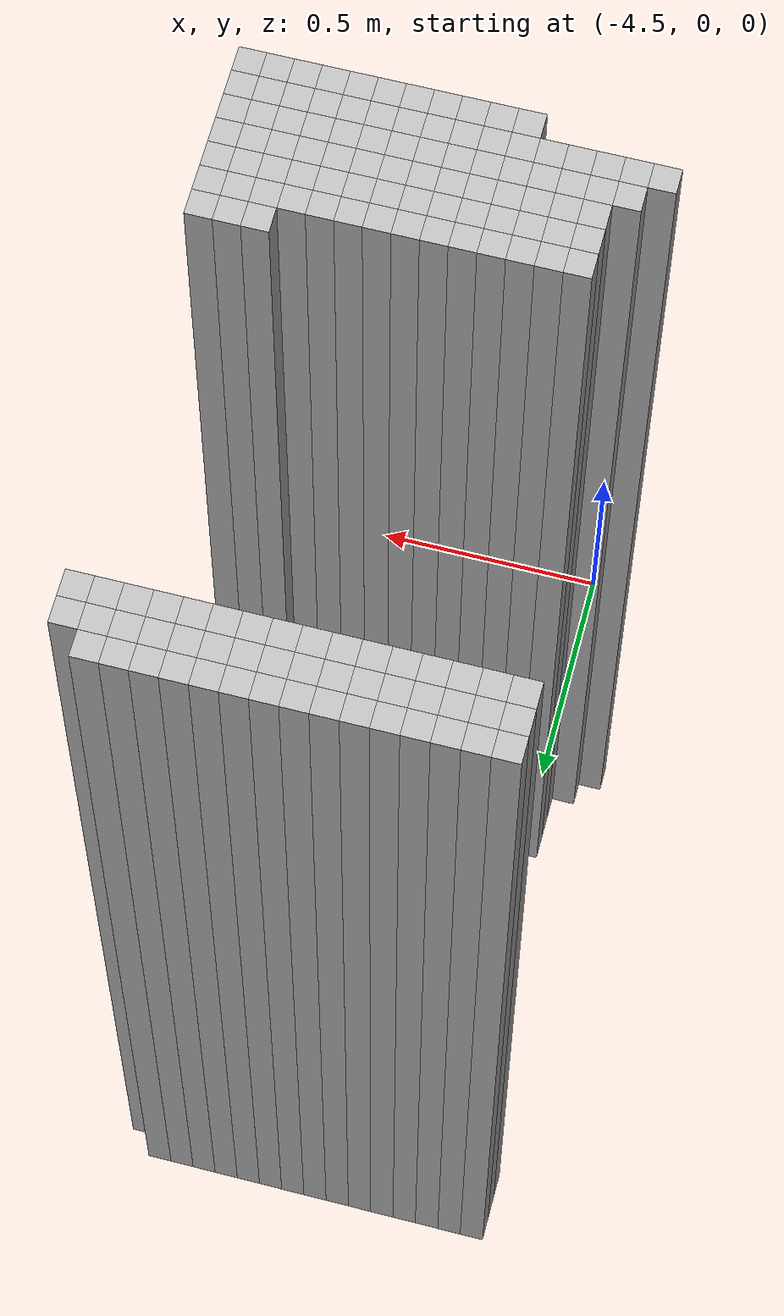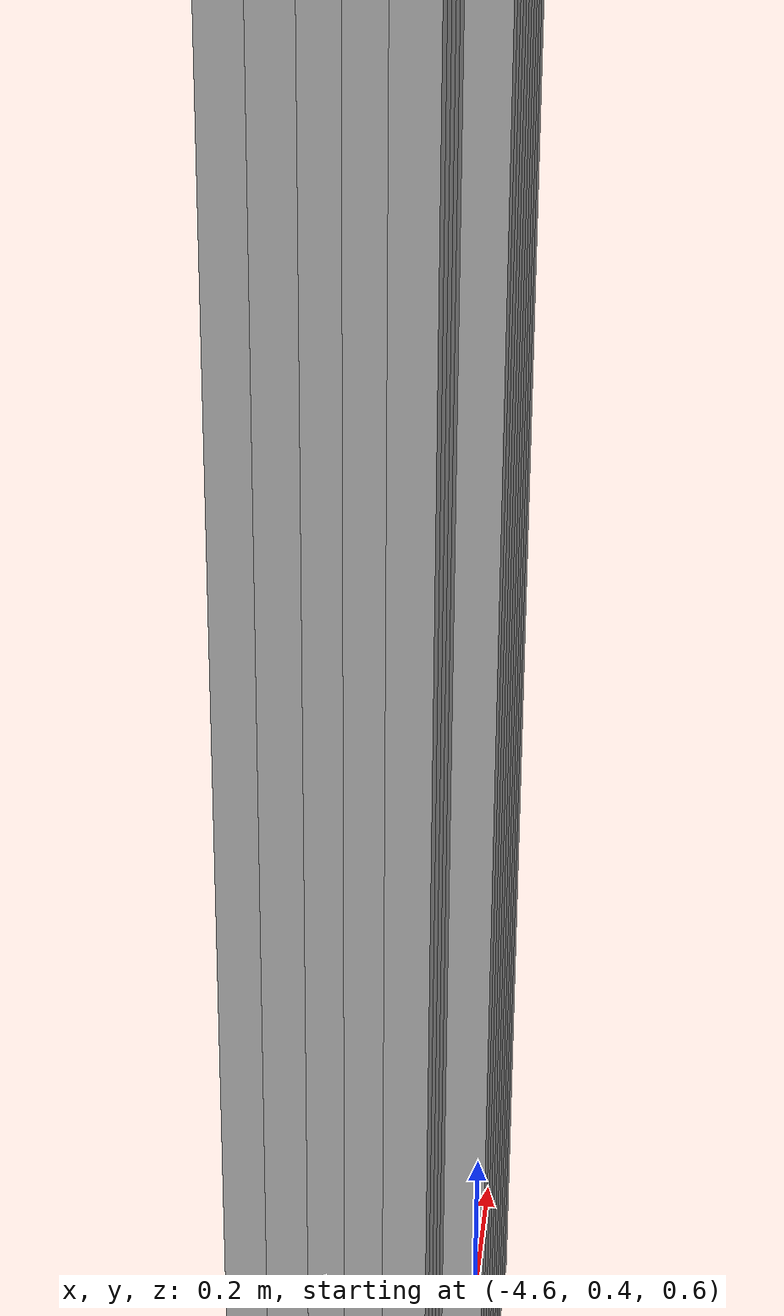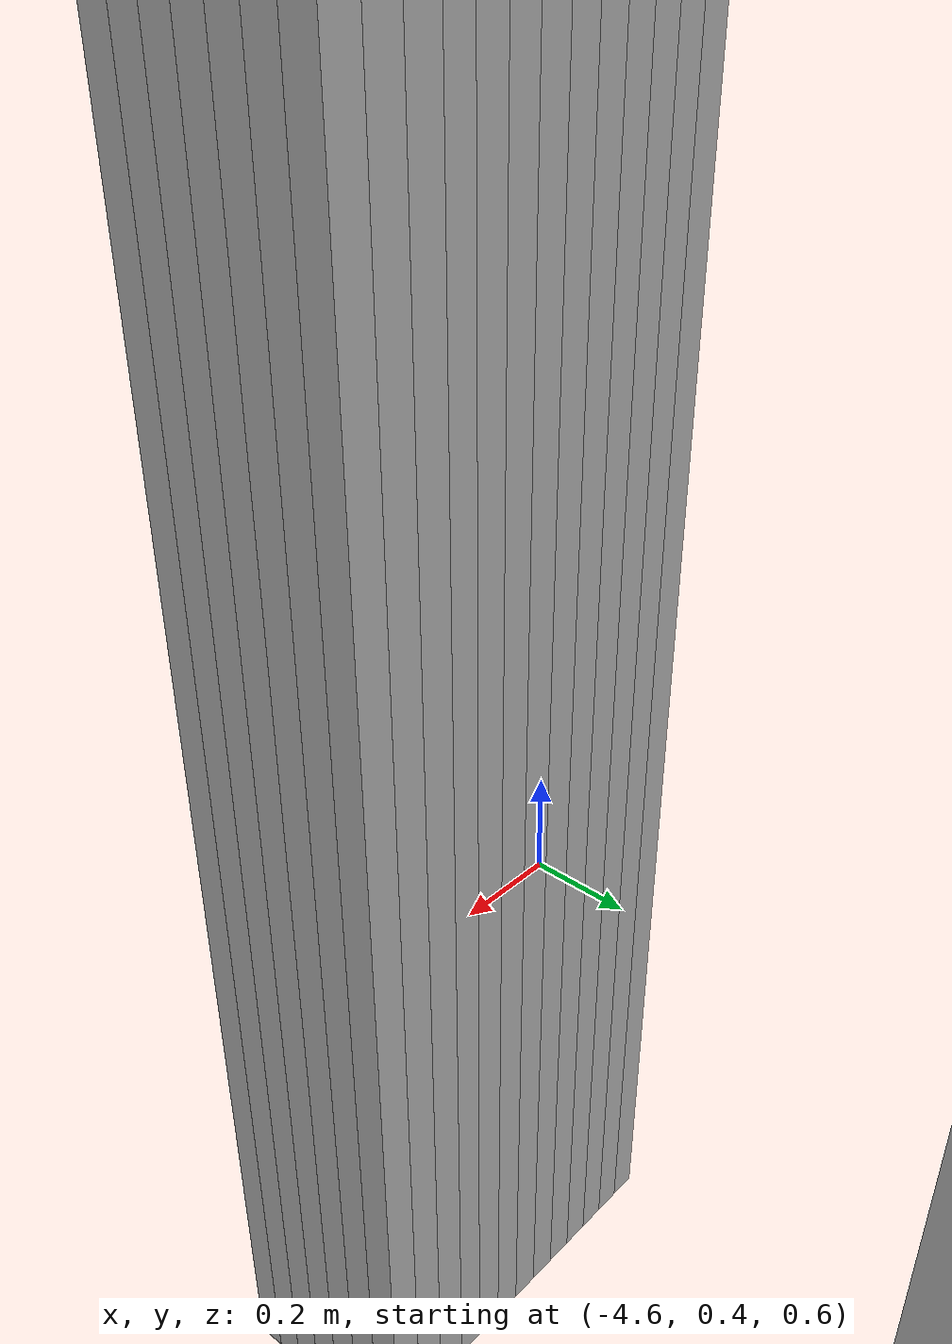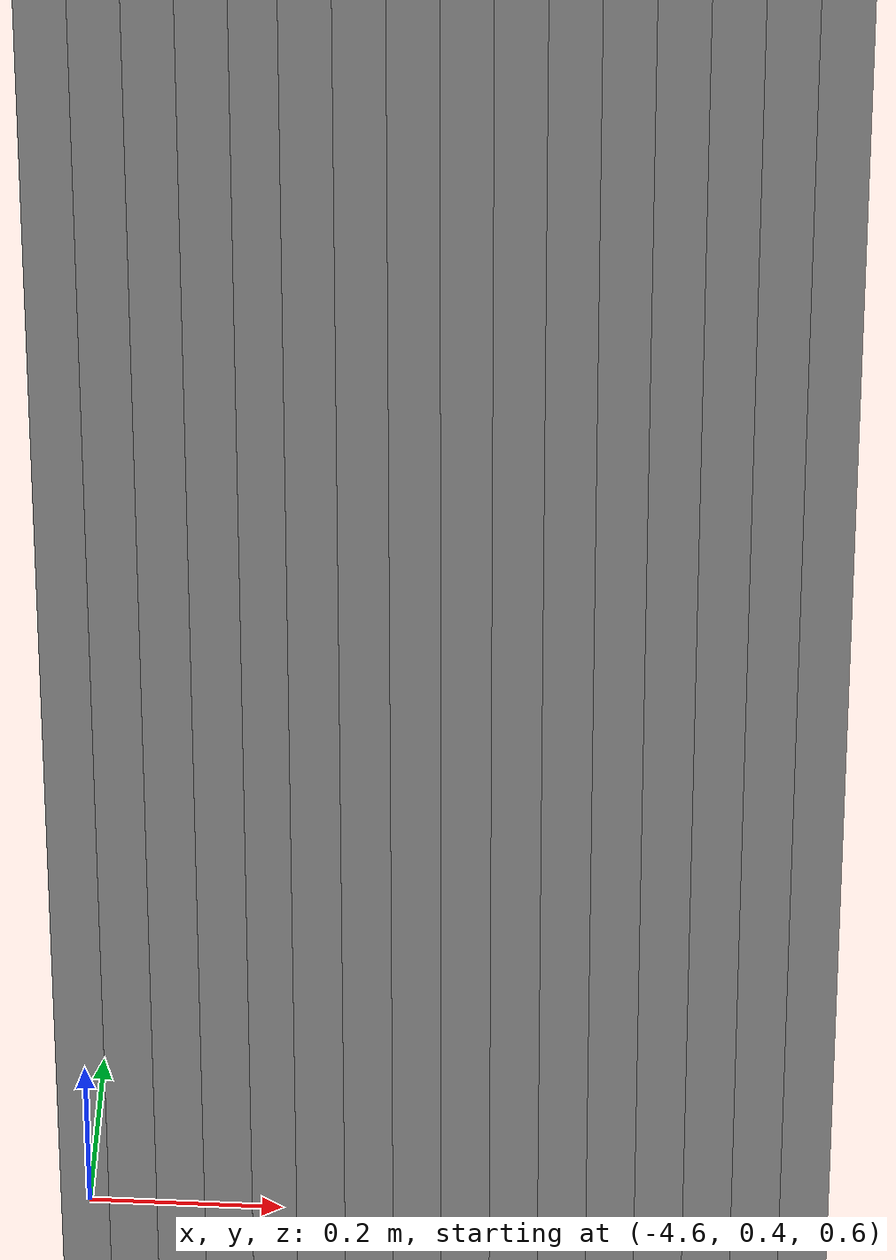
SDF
<sdf version="1.9">
 <world name="map_world">
  <model name="wall_131_122">
   <static>true</static>
   <pose>-4.611 1.580 1.250 0 0 0</pose>
   <link name="link">
    <collision name="collision"><geometry><box><size>0.050 0.050 2.500</size></box></geometry></collision>
    <visual name="visual"><geometry><box><size>0.050 0.050 2.500</size></box></geometry></visual>
   </link>
  </model>
  <model name="wall_132_122">
   <static>true</static>
   <pose>-4.561 1.580 1.250 0 0 0</pose>
   <link name="link">
    <collision name="collision"><geometry><box><size>0.050 0.050 2.500</size></box></geometry></collision>
    <visual name="visual"><geometry><box><size>0.050 0.050 2.500</size></box></geometry></visual>
   </link>
  </model>
  <model name="wall_133_122">
   <static>true</static>
   <pose>-4.511 1.580 1.250 0 0 0</pose>
   <link name="link">
    <collision name="collision"><geometry><box><size>0.050 0.050 2.500</size></box></geometry></collision>
    <visual name="visual"><geometry><box><size>0.050 0.050 2.500</size></box></geometry></visual>
   </link>
  </model>
  <model name="wall_134_122">
   <static>true</static>
   <pose>-4.461 1.580 1.250 0 0 0</pose>
   <link name="link">
    <collision name="collision"><geometry><box><size>0.050 0.050 2.500</size></box></geometry></collision>
    <visual name="visual"><geometry><box><size>0.050 0.050 2.500</size></box></geometry></visual>
   </link>
  </model>
  <model name="wall_135_122">
   <static>true</static>
   <pose>-4.411 1.580 1.250 0 0 0</pose>
   <link name="link">
    <collision name="collision"><geometry><box><size>0.050 0.050 2.500</size></box></geometry></collision>
    <visual name="visual"><geometry><box><size>0.050 0.050 2.500</size></box></geometry></visual>
   </link>
  </model>
  <model name="wall_136_122">
   <static>true</static>
   <pose>-4.361 1.580 1.250 0 0 0</pose>
   <link name="link">
    <collision name="collision"><geometry><box><size>0.050 0.050 2.500</size></box></geometry></collision>
    <visual name="visual"><geometry><box><size>0.050 0.050 2.500</size></box></geometry></visual>
   </link>
  </model>
  <model name="wall_137_122">
   <static>true</static>
   <pose>-4.311 1.580 1.250 0 0 0</pose>
   <link name="link">
    <collision name="collision"><geometry><box><size>0.050 0.050 2.500</size></box></geometry></collision>
    <visual name="visual"><geometry><box><size>0.050 0.050 2.500</size></box></geometry></visual>
   </link>
  </model>
  <model name="wall_138_122">
   <static>true</static>
   <pose>-4.261 1.580 1.250 0 0 0</pose>
   <link name="link">
    <collision name="collision"><geometry><box><size>0.050 0.050 2.500</size></box></geometry></collision>
    <visual name="visual"><geometry><box><size>0.050 0.050 2.500</size></box></geometry></visual>
   </link>
  </model>
  <model name="wall_139_122">
   <static>true</static>
   <pose>-4.211 1.580 1.250 0 0 0</pose>
   <link name="link">
    <collision name="collision"><geometry><box><size>0.050 0.050 2.500</size></box></geometry></collision>
    <visual name="visual"><geometry><box><size>0.050 0.050 2.500</size></box></geometry></visual>
   </link>
  </model>
  <model name="wall_140_122">
   <static>true</static>
   <pose>-4.161 1.580 1.250 0 0 0</pose>
   <link name="link">
    <collision name="collision"><geometry><box><size>0.050 0.050 2.500</size></box></geometry></collision>
    <visual name="visual"><geometry><box><size>0.050 0.050 2.500</size></box></geometry></visual>
   </link>
  </model>
  <model name="wall_141_122">
   <static>true</static>
   <pose>-4.111 1.580 1.250 0 0 0</pose>
   <link name="link">
    <collision name="collision"><geometry><box><size>0.050 0.050 2.500</size></box></geometry></collision>
    <visual name="visual"><geometry><box><size>0.050 0.050 2.500</size></box></geometry></visual>
   </link>
  </model>
  <model name="wall_142_122">
   <static>true</static>
   <pose>-4.061 1.580 1.250 0 0 0</pose>
   <link name="link">
    <collision name="collision"><geometry><box><size>0.050 0.050 2.500</size></box></geometry></collision>
    <visual name="visual"><geometry><box><size>0.050 0.050 2.500</size></box></geometry></visual>
   </link>
  </model>
  <model name="wall_143_122">
   <static>true</static>
   <pose>-4.011 1.580 1.250 0 0 0</pose>
   <link name="link">
    <collision name="collision"><geometry><box><size>0.050 0.050 2.500</size></box></geometry></collision>
    <visual name="visual"><geometry><box><size>0.050 0.050 2.500</size></box></geometry></visual>
   </link>
  </model>
  <model name="wall_144_122">
   <static>true</static>
   <pose>-3.961 1.580 1.250 0 0 0</pose>
   <link name="link">
    <collision name="collision"><geometry><box><size>0.050 0.050 2.500</size></box></geometry></collision>
    <visual name="visual"><geometry><box><size>0.050 0.050 2.500</size></box></geometry></visual>
   </link>
  </model>
  <model name="wall_145_122">
   <static>true</static>
   <pose>-3.911 1.580 1.250 0 0 0</pose>
   <link name="link">
    <collision name="collision"><geometry><box><size>0.050 0.050 2.500</size></box></geometry></collision>
    <visual name="visual"><geometry><box><size>0.050 0.050 2.500</size></box></geometry></visual>
   </link>
  </model>
  <model name="wall_131_123">
   <static>true</static>
   <pose>-4.611 1.530 1.250 0 0 0</pose>
   <link name="link">
    <collision name="collision"><geometry><box><size>0.050 0.050 2.500</size></box></geometry></collision>
    <visual name="visual"><geometry><box><size>0.050 0.050 2.500</size></box></geometry></visual>
   </link>
  </model>
  <model name="wall_132_123">
   <static>true</static>
   <pose>-4.561 1.530 1.250 0 0 0</pose>
   <link name="link">
    <collision name="collision"><geometry><box><size>0.050 0.050 2.500</size></box></geometry></collision>
    <visual name="visual"><geometry><box><size>0.050 0.050 2.500</size></box></geometry></visual>
   </link>
  </model>
  <model name="wall_133_123">
   <static>true</static>
   <pose>-4.511 1.530 1.250 0 0 0</pose>
   <link name="link">
    <collision name="collision"><geometry><box><size>0.050 0.050 2.500</size></box></geometry></collision>
    <visual name="visual"><geometry><box><size>0.050 0.050 2.500</size></box></geometry></visual>
   </link>
  </model>
  <model name="wall_134_123">
   <static>true</static>
   <pose>-4.461 1.530 1.250 0 0 0</pose>
   <link name="link">
    <collision name="collision"><geometry><box><size>0.050 0.050 2.500</size></box></geometry></collision>
    <visual name="visual"><geometry><box><size>0.050 0.050 2.500</size></box></geometry></visual>
   </link>
  </model>
  <model name="wall_135_123">
   <static>true</static>
   <pose>-4.411 1.530 1.250 0 0 0</pose>
   <link name="link">
    <collision name="collision"><geometry><box><size>0.050 0.050 2.500</size></box></geometry></collision>
    <visual name="visual"><geometry><box><size>0.050 0.050 2.500</size></box></geometry></visual>
   </link>
  </model>
  <model name="wall_136_123">
   <static>true</static>
   <pose>-4.361 1.530 1.250 0 0 0</pose>
   <link name="link">
    <collision name="collision"><geometry><box><size>0.050 0.050 2.500</size></box></geometry></collision>
    <visual name="visual"><geometry><box><size>0.050 0.050 2.500</size></box></geometry></visual>
   </link>
  </model>
  <model name="wall_137_123">
   <static>true</static>
   <pose>-4.311 1.530 1.250 0 0 0</pose>
   <link name="link">
    <collision name="collision"><geometry><box><size>0.050 0.050 2.500</size></box></geometry></collision>
    <visual name="visual"><geometry><box><size>0.050 0.050 2.500</size></box></geometry></visual>
   </link>
  </model>
  <model name="wall_138_123">
   <static>true</static>
   <pose>-4.261 1.530 1.250 0 0 0</pose>
   <link name="link">
    <collision name="collision"><geometry><box><size>0.050 0.050 2.500</size></box></geometry></collision>
    <visual name="visual"><geometry><box><size>0.050 0.050 2.500</size></box></geometry></visual>
   </link>
  </model>
  <model name="wall_139_123">
   <static>true</static>
   <pose>-4.211 1.530 1.250 0 0 0</pose>
   <link name="link">
    <collision name="collision"><geometry><box><size>0.050 0.050 2.500</size></box></geometry></collision>
    <visual name="visual"><geometry><box><size>0.050 0.050 2.500</size></box></geometry></visual>
   </link>
  </model>
  <model name="wall_140_123">
   <static>true</static>
   <pose>-4.161 1.530 1.250 0 0 0</pose>
   <link name="link">
    <collision name="collision"><geometry><box><size>0.050 0.050 2.500</size></box></geometry></collision>
    <visual name="visual"><geometry><box><size>0.050 0.050 2.500</size></box></geometry></visual>
   </link>
  </model>
  <model name="wall_141_123">
   <static>true</static>
   <pose>-4.111 1.530 1.250 0 0 0</pose>
   <link name="link">
    <collision name="collision"><geometry><box><size>0.050 0.050 2.500</size></box></geometry></collision>
    <visual name="visual"><geometry><box><size>0.050 0.050 2.500</size></box></geometry></visual>
   </link>
  </model>
  <model name="wall_142_123">
   <static>true</static>
   <pose>-4.061 1.530 1.250 0 0 0</pose>
   <link name="link">
    <collision name="collision"><geometry><box><size>0.050 0.050 2.500</size></box></geometry></collision>
    <visual name="visual"><geometry><box><size>0.050 0.050 2.500</size></box></geometry></visual>
   </link>
  </model>
  <model name="wall_143_123">
   <static>true</static>
   <pose>-4.011 1.530 1.250 0 0 0</pose>
   <link name="link">
    <collision name="collision"><geometry><box><size>0.050 0.050 2.500</size></box></geometry></collision>
    <visual name="visual"><geometry><box><size>0.050 0.050 2.500</size></box></geometry></visual>
   </link>
  </model>
  <model name="wall_144_123">
   <static>true</static>
   <pose>-3.961 1.530 1.250 0 0 0</pose>
   <link name="link">
    <collision name="collision"><geometry><box><size>0.050 0.050 2.500</size></box></geometry></collision>
    <visual name="visual"><geometry><box><size>0.050 0.050 2.500</size></box></geometry></visual>
   </link>
  </model>
  <model name="wall_145_123">
   <static>true</static>
   <pose>-3.911 1.530 1.250 0 0 0</pose>
   <link name="link">
    <collision name="collision"><geometry><box><size>0.050 0.050 2.500</size></box></geometry></collision>
    <visual name="visual"><geometry><box><size>0.050 0.050 2.500</size></box></geometry></visual>
   </link>
  </model>
  <model name="wall_146_123">
   <static>true</static>
   <pose>-3.861 1.530 1.250 0 0 0</pose>
   <link name="link">
    <collision name="collision"><geometry><box><size>0.050 0.050 2.500</size></box></geometry></collision>
    <visual name="visual"><geometry><box><size>0.050 0.050 2.500</size></box></geometry></visual>
   </link>
  </model>
  <model name="wall_131_124">
   <static>true</static>
   <pose>-4.611 1.480 1.250 0 0 0</pose>
   <link name="link">
    <collision name="collision"><geometry><box><size>0.050 0.050 2.500</size></box></geometry></collision>
    <visual name="visual"><geometry><box><size>0.050 0.050 2.500</size></box></geometry></visual>
   </link>
  </model>
  <model name="wall_132_124">
   <static>true</static>
   <pose>-4.561 1.480 1.250 0 0 0</pose>
   <link name="link">
    <collision name="collision"><geometry><box><size>0.050 0.050 2.500</size></box></geometry></collision>
    <visual name="visual"><geometry><box><size>0.050 0.050 2.500</size></box></geometry></visual>
   </link>
  </model>
  <model name="wall_133_124">
   <static>true</static>
   <pose>-4.511 1.480 1.250 0 0 0</pose>
   <link name="link">
    <collision name="collision"><geometry><box><size>0.050 0.050 2.500</size></box></geometry></collision>
    <visual name="visual"><geometry><box><size>0.050 0.050 2.500</size></box></geometry></visual>
   </link>
  </model>
  <model name="wall_134_124">
   <static>true</static>
   <pose>-4.461 1.480 1.250 0 0 0</pose>
   <link name="link">
    <collision name="collision"><geometry><box><size>0.050 0.050 2.500</size></box></geometry></collision>
    <visual name="visual"><geometry><box><size>0.050 0.050 2.500</size></box></geometry></visual>
   </link>
  </model>
  <model name="wall_135_124">
   <static>true</static>
   <pose>-4.411 1.480 1.250 0 0 0</pose>
   <link name="link">
    <collision name="collision"><geometry><box><size>0.050 0.050 2.500</size></box></geometry></collision>
    <visual name="visual"><geometry><box><size>0.050 0.050 2.500</size></box></geometry></visual>
   </link>
  </model>
  <model name="wall_136_124">
   <static>true</static>
   <pose>-4.361 1.480 1.250 0 0 0</pose>
   <link name="link">
    <collision name="collision"><geometry><box><size>0.050 0.050 2.500</size></box></geometry></collision>
    <visual name="visual"><geometry><box><size>0.050 0.050 2.500</size></box></geometry></visual>
   </link>
  </model>
  <model name="wall_137_124">
   <static>true</static>
   <pose>-4.311 1.480 1.250 0 0 0</pose>
   <link name="link">
    <collision name="collision"><geometry><box><size>0.050 0.050 2.500</size></box></geometry></collision>
    <visual name="visual"><geometry><box><size>0.050 0.050 2.500</size></box></geometry></visual>
   </link>
  </model>
  <model name="wall_138_124">
   <static>true</static>
   <pose>-4.261 1.480 1.250 0 0 0</pose>
   <link name="link">
    <collision name="collision"><geometry><box><size>0.050 0.050 2.500</size></box></geometry></collision>
    <visual name="visual"><geometry><box><size>0.050 0.050 2.500</size></box></geometry></visual>
   </link>
  </model>
  <model name="wall_139_124">
   <static>true</static>
   <pose>-4.211 1.480 1.250 0 0 0</pose>
   <link name="link">
    <collision name="collision"><geometry><box><size>0.050 0.050 2.500</size></box></geometry></collision>
    <visual name="visual"><geometry><box><size>0.050 0.050 2.500</size></box></geometry></visual>
   </link>
  </model>
  <model name="wall_140_124">
   <static>true</static>
   <pose>-4.161 1.480 1.250 0 0 0</pose>
   <link name="link">
    <collision name="collision"><geometry><box><size>0.050 0.050 2.500</size></box></geometry></collision>
    <visual name="visual"><geometry><box><size>0.050 0.050 2.500</size></box></geometry></visual>
   </link>
  </model>
  <model name="wall_141_124">
   <static>true</static>
   <pose>-4.111 1.480 1.250 0 0 0</pose>
   <link name="link">
    <collision name="collision"><geometry><box><size>0.050 0.050 2.500</size></box></geometry></collision>
    <visual name="visual"><geometry><box><size>0.050 0.050 2.500</size></box></geometry></visual>
   </link>
  </model>
  <model name="wall_142_124">
   <static>true</static>
   <pose>-4.061 1.480 1.250 0 0 0</pose>
   <link name="link">
    <collision name="collision"><geometry><box><size>0.050 0.050 2.500</size></box></geometry></collision>
    <visual name="visual"><geometry><box><size>0.050 0.050 2.500</size></box></geometry></visual>
   </link>
  </model>
  <model name="wall_143_124">
   <static>true</static>
   <pose>-4.011 1.480 1.250 0 0 0</pose>
   <link name="link">
    <collision name="collision"><geometry><box><size>0.050 0.050 2.500</size></box></geometry></collision>
    <visual name="visual"><geometry><box><size>0.050 0.050 2.500</size></box></geometry></visual>
   </link>
  </model>
  <model name="wall_144_124">
   <static>true</static>
   <pose>-3.961 1.480 1.250 0 0 0</pose>
   <link name="link">
    <collision name="collision"><geometry><box><size>0.050 0.050 2.500</size></box></geometry></collision>
    <visual name="visual"><geometry><box><size>0.050 0.050 2.500</size></box></geometry></visual>
   </link>
  </model>
  <model name="wall_145_124">
   <static>true</static>
   <pose>-3.911 1.480 1.250 0 0 0</pose>
   <link name="link">
    <collision name="collision"><geometry><box><size>0.050 0.050 2.500</size></box></geometry></collision>
    <visual name="visual"><geometry><box><size>0.050 0.050 2.500</size></box></geometry></visual>
   </link>
  </model>
  <model name="wall_146_124">
   <static>true</static>
   <pose>-3.861 1.480 1.250 0 0 0</pose>
   <link name="link">
    <collision name="collision"><geometry><box><size>0.050 0.050 2.500</size></box></geometry></collision>
    <visual name="visual"><geometry><box><size>0.050 0.050 2.500</size></box></geometry></visual>
   </link>
  </model>
  <model name="wall_144_139">
   <static>true</static>
   <pose>-3.961 0.730 1.250 0 0 0</pose>
   <link name="link">
    <collision name="collision"><geometry><box><size>0.050 0.050 2.500</size></box></geometry></collision>
    <visual name="visual"><geometry><box><size>0.050 0.050 2.500</size></box></geometry></visual>
   </link>
  </model>
  <model name="wall_145_139">
   <static>true</static>
   <pose>-3.911 0.730 1.250 0 0 0</pose>
   <link name="link">
    <collision name="collision"><geometry><box><size>0.050 0.050 2.500</size></box></geometry></collision>
    <visual name="visual"><geometry><box><size>0.050 0.050 2.500</size></box></geometry></visual>
   </link>
  </model>
  <model name="wall_146_139">
   <static>true</static>
   <pose>-3.861 0.730 1.250 0 0 0</pose>
   <link name="link">
    <collision name="collision"><geometry><box><size>0.050 0.050 2.500</size></box></geometry></collision>
    <visual name="visual"><geometry><box><size>0.050 0.050 2.500</size></box></geometry></visual>
   </link>
  </model>
  <model name="wall_133_140">
   <static>true</static>
   <pose>-4.511 0.680 1.250 0 0 0</pose>
   <link name="link">
    <collision name="collision"><geometry><box><size>0.050 0.050 2.500</size></box></geometry></collision>
    <visual name="visual"><geometry><box><size>0.050 0.050 2.500</size></box></geometry></visual>
   </link>
  </model>
  <model name="wall_134_140">
   <static>true</static>
   <pose>-4.461 0.680 1.250 0 0 0</pose>
   <link name="link">
    <collision name="collision"><geometry><box><size>0.050 0.050 2.500</size></box></geometry></collision>
    <visual name="visual"><geometry><box><size>0.050 0.050 2.500</size></box></geometry></visual>
   </link>
  </model>
  <model name="wall_135_140">
   <static>true</static>
   <pose>-4.411 0.680 1.250 0 0 0</pose>
   <link name="link">
    <collision name="collision"><geometry><box><size>0.050 0.050 2.500</size></box></geometry></collision>
    <visual name="visual"><geometry><box><size>0.050 0.050 2.500</size></box></geometry></visual>
   </link>
  </model>
  <model name="wall_136_140">
   <static>true</static>
   <pose>-4.361 0.680 1.250 0 0 0</pose>
   <link name="link">
    <collision name="collision"><geometry><box><size>0.050 0.050 2.500</size></box></geometry></collision>
    <visual name="visual"><geometry><box><size>0.050 0.050 2.500</size></box></geometry></visual>
   </link>
  </model>
  <model name="wall_137_140">
   <static>true</static>
   <pose>-4.311 0.680 1.250 0 0 0</pose>
   <link name="link">
    <collision name="collision"><geometry><box><size>0.050 0.050 2.500</size></box></geometry></collision>
    <visual name="visual"><geometry><box><size>0.050 0.050 2.500</size></box></geometry></visual>
   </link>
  </model>
  <model name="wall_138_140">
   <static>true</static>
   <pose>-4.261 0.680 1.250 0 0 0</pose>
   <link name="link">
    <collision name="collision"><geometry><box><size>0.050 0.050 2.500</size></box></geometry></collision>
    <visual name="visual"><geometry><box><size>0.050 0.050 2.500</size></box></geometry></visual>
   </link>
  </model>
  <model name="wall_139_140">
   <static>true</static>
   <pose>-4.211 0.680 1.250 0 0 0</pose>
   <link name="link">
    <collision name="collision"><geometry><box><size>0.050 0.050 2.500</size></box></geometry></collision>
    <visual name="visual"><geometry><box><size>0.050 0.050 2.500</size></box></geometry></visual>
   </link>
  </model>
  <model name="wall_140_140">
   <static>true</static>
   <pose>-4.161 0.680 1.250 0 0 0</pose>
   <link name="link">
    <collision name="collision"><geometry><box><size>0.050 0.050 2.500</size></box></geometry></collision>
    <visual name="visual"><geometry><box><size>0.050 0.050 2.500</size></box></geometry></visual>
   </link>
  </model>
  <model name="wall_141_140">
   <static>true</static>
   <pose>-4.111 0.680 1.250 0 0 0</pose>
   <link name="link">
    <collision name="collision"><geometry><box><size>0.050 0.050 2.500</size></box></geometry></collision>
    <visual name="visual"><geometry><box><size>0.050 0.050 2.500</size></box></geometry></visual>
   </link>
  </model>
  <model name="wall_142_140">
   <static>true</static>
   <pose>-4.061 0.680 1.250 0 0 0</pose>
   <link name="link">
    <collision name="collision"><geometry><box><size>0.050 0.050 2.500</size></box></geometry></collision>
    <visual name="visual"><geometry><box><size>0.050 0.050 2.500</size></box></geometry></visual>
   </link>
  </model>
  <model name="wall_143_140">
   <static>true</static>
   <pose>-4.011 0.680 1.250 0 0 0</pose>
   <link name="link">
    <collision name="collision"><geometry><box><size>0.050 0.050 2.500</size></box></geometry></collision>
    <visual name="visual"><geometry><box><size>0.050 0.050 2.500</size></box></geometry></visual>
   </link>
  </model>
  <model name="wall_144_140">
   <static>true</static>
   <pose>-3.961 0.680 1.250 0 0 0</pose>
   <link name="link">
    <collision name="collision"><geometry><box><size>0.050 0.050 2.500</size></box></geometry></collision>
    <visual name="visual"><geometry><box><size>0.050 0.050 2.500</size></box></geometry></visual>
   </link>
  </model>
  <model name="wall_145_140">
   <static>true</static>
   <pose>-3.911 0.680 1.250 0 0 0</pose>
   <link name="link">
    <collision name="collision"><geometry><box><size>0.050 0.050 2.500</size></box></geometry></collision>
    <visual name="visual"><geometry><box><size>0.050 0.050 2.500</size></box></geometry></visual>
   </link>
  </model>
  <model name="wall_146_140">
   <static>true</static>
   <pose>-3.861 0.680 1.250 0 0 0</pose>
   <link name="link">
    <collision name="collision"><geometry><box><size>0.050 0.050 2.500</size></box></geometry></collision>
    <visual name="visual"><geometry><box><size>0.050 0.050 2.500</size></box></geometry></visual>
   </link>
  </model>
  <model name="wall_133_141">
   <static>true</static>
   <pose>-4.511 0.630 1.250 0 0 0</pose>
   <link name="link">
    <collision name="collision"><geometry><box><size>0.050 0.050 2.500</size></box></geometry></collision>
    <visual name="visual"><geometry><box><size>0.050 0.050 2.500</size></box></geometry></visual>
   </link>
  </model>
  <model name="wall_134_141">
   <static>true</static>
   <pose>-4.461 0.630 1.250 0 0 0</pose>
   <link name="link">
    <collision name="collision"><geometry><box><size>0.050 0.050 2.500</size></box></geometry></collision>
    <visual name="visual"><geometry><box><size>0.050 0.050 2.500</size></box></geometry></visual>
   </link>
  </model>
  <model name="wall_135_141">
   <static>true</static>
   <pose>-4.411 0.630 1.250 0 0 0</pose>
   <link name="link">
    <collision name="collision"><geometry><box><size>0.050 0.050 2.500</size></box></geometry></collision>
    <visual name="visual"><geometry><box><size>0.050 0.050 2.500</size></box></geometry></visual>
   </link>
  </model>
  <model name="wall_136_141">
   <static>true</static>
   <pose>-4.361 0.630 1.250 0 0 0</pose>
   <link name="link">
    <collision name="collision"><geometry><box><size>0.050 0.050 2.500</size></box></geometry></collision>
    <visual name="visual"><geometry><box><size>0.050 0.050 2.500</size></box></geometry></visual>
   </link>
  </model>
  <model name="wall_137_141">
   <static>true</static>
   <pose>-4.311 0.630 1.250 0 0 0</pose>
   <link name="link">
    <collision name="collision"><geometry><box><size>0.050 0.050 2.500</size></box></geometry></collision>
    <visual name="visual"><geometry><box><size>0.050 0.050 2.500</size></box></geometry></visual>
   </link>
  </model>
  <model name="wall_138_141">
   <static>true</static>
   <pose>-4.261 0.630 1.250 0 0 0</pose>
   <link name="link">
    <collision name="collision"><geometry><box><size>0.050 0.050 2.500</size></box></geometry></collision>
    <visual name="visual"><geometry><box><size>0.050 0.050 2.500</size></box></geometry></visual>
   </link>
  </model>
  <model name="wall_139_141">
   <static>true</static>
   <pose>-4.211 0.630 1.250 0 0 0</pose>
   <link name="link">
    <collision name="collision"><geometry><box><size>0.050 0.050 2.500</size></box></geometry></collision>
    <visual name="visual"><geometry><box><size>0.050 0.050 2.500</size></box></geometry></visual>
   </link>
  </model>
  <model name="wall_140_141">
   <static>true</static>
   <pose>-4.161 0.630 1.250 0 0 0</pose>
   <link name="link">
    <collision name="collision"><geometry><box><size>0.050 0.050 2.500</size></box></geometry></collision>
    <visual name="visual"><geometry><box><size>0.050 0.050 2.500</size></box></geometry></visual>
   </link>
  </model>
  <model name="wall_141_141">
   <static>true</static>
   <pose>-4.111 0.630 1.250 0 0 0</pose>
   <link name="link">
    <collision name="collision"><geometry><box><size>0.050 0.050 2.500</size></box></geometry></collision>
    <visual name="visual"><geometry><box><size>0.050 0.050 2.500</size></box></geometry></visual>
   </link>
  </model>
  <model name="wall_142_141">
   <static>true</static>
   <pose>-4.061 0.630 1.250 0 0 0</pose>
   <link name="link">
    <collision name="collision"><geometry><box><size>0.050 0.050 2.500</size></box></geometry></collision>
    <visual name="visual"><geometry><box><size>0.050 0.050 2.500</size></box></geometry></visual>
   </link>
  </model>
  <model name="wall_143_141">
   <static>true</static>
   <pose>-4.011 0.630 1.250 0 0 0</pose>
   <link name="link">
    <collision name="collision"><geometry><box><size>0.050 0.050 2.500</size></box></geometry></collision>
    <visual name="visual"><geometry><box><size>0.050 0.050 2.500</size></box></geometry></visual>
   </link>
  </model>
  <model name="wall_144_141">
   <static>true</static>
   <pose>-3.961 0.630 1.250 0 0 0</pose>
   <link name="link">
    <collision name="collision"><geometry><box><size>0.050 0.050 2.500</size></box></geometry></collision>
    <visual name="visual"><geometry><box><size>0.050 0.050 2.500</size></box></geometry></visual>
   </link>
  </model>
  <model name="wall_145_141">
   <static>true</static>
   <pose>-3.911 0.630 1.250 0 0 0</pose>
   <link name="link">
    <collision name="collision"><geometry><box><size>0.050 0.050 2.500</size></box></geometry></collision>
    <visual name="visual"><geometry><box><size>0.050 0.050 2.500</size></box></geometry></visual>
   </link>
  </model>
  <model name="wall_146_141">
   <static>true</static>
   <pose>-3.861 0.630 1.250 0 0 0</pose>
   <link name="link">
    <collision name="collision"><geometry><box><size>0.050 0.050 2.500</size></box></geometry></collision>
    <visual name="visual"><geometry><box><size>0.050 0.050 2.500</size></box></geometry></visual>
   </link>
  </model>
  <model name="wall_133_142">
   <static>true</static>
   <pose>-4.511 0.580 1.250 0 0 0</pose>
   <link name="link">
    <collision name="collision"><geometry><box><size>0.050 0.050 2.500</size></box></geometry></collision>
    <visual name="visual"><geometry><box><size>0.050 0.050 2.500</size></box></geometry></visual>
   </link>
  </model>
  <model name="wall_134_142">
   <static>true</static>
   <pose>-4.461 0.580 1.250 0 0 0</pose>
   <link name="link">
    <collision name="collision"><geometry><box><size>0.050 0.050 2.500</size></box></geometry></collision>
    <visual name="visual"><geometry><box><size>0.050 0.050 2.500</size></box></geometry></visual>
   </link>
  </model>
  <model name="wall_135_142">
   <static>true</static>
   <pose>-4.411 0.580 1.250 0 0 0</pose>
   <link name="link">
    <collision name="collision"><geometry><box><size>0.050 0.050 2.500</size></box></geometry></collision>
    <visual name="visual"><geometry><box><size>0.050 0.050 2.500</size></box></geometry></visual>
   </link>
  </model>
  <model name="wall_136_142">
   <static>true</static>
   <pose>-4.361 0.580 1.250 0 0 0</pose>
   <link name="link">
    <collision name="collision"><geometry><box><size>0.050 0.050 2.500</size></box></geometry></collision>
    <visual name="visual"><geometry><box><size>0.050 0.050 2.500</size></box></geometry></visual>
   </link>
  </model>
  <model name="wall_137_142">
   <static>true</static>
   <pose>-4.311 0.580 1.250 0 0 0</pose>
   <link name="link">
    <collision name="collision"><geometry><box><size>0.050 0.050 2.500</size></box></geometry></collision>
    <visual name="visual"><geometry><box><size>0.050 0.050 2.500</size></box></geometry></visual>
   </link>
  </model>
  <model name="wall_138_142">
   <static>true</static>
   <pose>-4.261 0.580 1.250 0 0 0</pose>
   <link name="link">
    <collision name="collision"><geometry><box><size>0.050 0.050 2.500</size></box></geometry></collision>
    <visual name="visual"><geometry><box><size>0.050 0.050 2.500</size></box></geometry></visual>
   </link>
  </model>
  <model name="wall_139_142">
   <static>true</static>
   <pose>-4.211 0.580 1.250 0 0 0</pose>
   <link name="link">
    <collision name="collision"><geometry><box><size>0.050 0.050 2.500</size></box></geometry></collision>
    <visual name="visual"><geometry><box><size>0.050 0.050 2.500</size></box></geometry></visual>
   </link>
  </model>
  <model name="wall_140_142">
   <static>true</static>
   <pose>-4.161 0.580 1.250 0 0 0</pose>
   <link name="link">
    <collision name="collision"><geometry><box><size>0.050 0.050 2.500</size></box></geometry></collision>
    <visual name="visual"><geometry><box><size>0.050 0.050 2.500</size></box></geometry></visual>
   </link>
  </model>
  <model name="wall_141_142">
   <static>true</static>
   <pose>-4.111 0.580 1.250 0 0 0</pose>
   <link name="link">
    <collision name="collision"><geometry><box><size>0.050 0.050 2.500</size></box></geometry></collision>
    <visual name="visual"><geometry><box><size>0.050 0.050 2.500</size></box></geometry></visual>
   </link>
  </model>
  <model name="wall_142_142">
   <static>true</static>
   <pose>-4.061 0.580 1.250 0 0 0</pose>
   <link name="link">
    <collision name="collision"><geometry><box><size>0.050 0.050 2.500</size></box></geometry></collision>
    <visual name="visual"><geometry><box><size>0.050 0.050 2.500</size></box></geometry></visual>
   </link>
  </model>
  <model name="wall_143_142">
   <static>true</static>
   <pose>-4.011 0.580 1.250 0 0 0</pose>
   <link name="link">
    <collision name="collision"><geometry><box><size>0.050 0.050 2.500</size></box></geometry></collision>
    <visual name="visual"><geometry><box><size>0.050 0.050 2.500</size></box></geometry></visual>
   </link>
  </model>
  <model name="wall_144_142">
   <static>true</static>
   <pose>-3.961 0.580 1.250 0 0 0</pose>
   <link name="link">
    <collision name="collision"><geometry><box><size>0.050 0.050 2.500</size></box></geometry></collision>
    <visual name="visual"><geometry><box><size>0.050 0.050 2.500</size></box></geometry></visual>
   </link>
  </model>
  <model name="wall_145_142">
   <static>true</static>
   <pose>-3.911 0.580 1.250 0 0 0</pose>
   <link name="link">
    <collision name="collision"><geometry><box><size>0.050 0.050 2.500</size></box></geometry></collision>
    <visual name="visual"><geometry><box><size>0.050 0.050 2.500</size></box></geometry></visual>
   </link>
  </model>
  <model name="wall_146_142">
   <static>true</static>
   <pose>-3.861 0.580 1.250 0 0 0</pose>
   <link name="link">
    <collision name="collision"><geometry><box><size>0.050 0.050 2.500</size></box></geometry></collision>
    <visual name="visual"><geometry><box><size>0.050 0.050 2.500</size></box></geometry></visual>
   </link>
  </model>
  <model name="wall_132_143">
   <static>true</static>
   <pose>-4.561 0.530 1.250 0 0 0</pose>
   <link name="link">
    <collision name="collision"><geometry><box><size>0.050 0.050 2.500</size></box></geometry></collision>
    <visual name="visual"><geometry><box><size>0.050 0.050 2.500</size></box></geometry></visual>
   </link>
  </model>
  <model name="wall_133_143">
   <static>true</static>
   <pose>-4.511 0.530 1.250 0 0 0</pose>
   <link name="link">
    <collision name="collision"><geometry><box><size>0.050 0.050 2.500</size></box></geometry></collision>
    <visual name="visual"><geometry><box><size>0.050 0.050 2.500</size></box></geometry></visual>
   </link>
  </model>
  <model name="wall_134_143">
   <static>true</static>
   <pose>-4.461 0.530 1.250 0 0 0</pose>
   <link name="link">
    <collision name="collision"><geometry><box><size>0.050 0.050 2.500</size></box></geometry></collision>
    <visual name="visual"><geometry><box><size>0.050 0.050 2.500</size></box></geometry></visual>
   </link>
  </model>
  <model name="wall_135_143">
   <static>true</static>
   <pose>-4.411 0.530 1.250 0 0 0</pose>
   <link name="link">
    <collision name="collision"><geometry><box><size>0.050 0.050 2.500</size></box></geometry></collision>
    <visual name="visual"><geometry><box><size>0.050 0.050 2.500</size></box></geometry></visual>
   </link>
  </model>
  <model name="wall_136_143">
   <static>true</static>
   <pose>-4.361 0.530 1.250 0 0 0</pose>
   <link name="link">
    <collision name="collision"><geometry><box><size>0.050 0.050 2.500</size></box></geometry></collision>
    <visual name="visual"><geometry><box><size>0.050 0.050 2.500</size></box></geometry></visual>
   </link>
  </model>
  <model name="wall_137_143">
   <static>true</static>
   <pose>-4.311 0.530 1.250 0 0 0</pose>
   <link name="link">
    <collision name="collision"><geometry><box><size>0.050 0.050 2.500</size></box></geometry></collision>
    <visual name="visual"><geometry><box><size>0.050 0.050 2.500</size></box></geometry></visual>
   </link>
  </model>
  <model name="wall_138_143">
   <static>true</static>
   <pose>-4.261 0.530 1.250 0 0 0</pose>
   <link name="link">
    <collision name="collision"><geometry><box><size>0.050 0.050 2.500</size></box></geometry></collision>
    <visual name="visual"><geometry><box><size>0.050 0.050 2.500</size></box></geometry></visual>
   </link>
  </model>
  <model name="wall_139_143">
   <static>true</static>
   <pose>-4.211 0.530 1.250 0 0 0</pose>
   <link name="link">
    <collision name="collision"><geometry><box><size>0.050 0.050 2.500</size></box></geometry></collision>
    <visual name="visual"><geometry><box><size>0.050 0.050 2.500</size></box></geometry></visual>
   </link>
  </model>
  <model name="wall_140_143">
   <static>true</static>
   <pose>-4.161 0.530 1.250 0 0 0</pose>
   <link name="link">
    <collision name="collision"><geometry><box><size>0.050 0.050 2.500</size></box></geometry></collision>
    <visual name="visual"><geometry><box><size>0.050 0.050 2.500</size></box></geometry></visual>
   </link>
  </model>
  <model name="wall_141_143">
   <static>true</static>
   <pose>-4.111 0.530 1.250 0 0 0</pose>
   <link name="link">
    <collision name="collision"><geometry><box><size>0.050 0.050 2.500</size></box></geometry></collision>
    <visual name="visual"><geometry><box><size>0.050 0.050 2.500</size></box></geometry></visual>
   </link>
  </model>
  <model name="wall_142_143">
   <static>true</static>
   <pose>-4.061 0.530 1.250 0 0 0</pose>
   <link name="link">
    <collision name="collision"><geometry><box><size>0.050 0.050 2.500</size></box></geometry></collision>
    <visual name="visual"><geometry><box><size>0.050 0.050 2.500</size></box></geometry></visual>
   </link>
  </model>
  <model name="wall_143_143">
   <static>true</static>
   <pose>-4.011 0.530 1.250 0 0 0</pose>
   <link name="link">
    <collision name="collision"><geometry><box><size>0.050 0.050 2.500</size></box></geometry></collision>
    <visual name="visual"><geometry><box><size>0.050 0.050 2.500</size></box></geometry></visual>
   </link>
  </model>
  <model name="wall_144_143">
   <static>true</static>
   <pose>-3.961 0.530 1.250 0 0 0</pose>
   <link name="link">
    <collision name="collision"><geometry><box><size>0.050 0.050 2.500</size></box></geometry></collision>
    <visual name="visual"><geometry><box><size>0.050 0.050 2.500</size></box></geometry></visual>
   </link>
  </model>
  <model name="wall_145_143">
   <static>true</static>
   <pose>-3.911 0.530 1.250 0 0 0</pose>
   <link name="link">
    <collision name="collision"><geometry><box><size>0.050 0.050 2.500</size></box></geometry></collision>
    <visual name="visual"><geometry><box><size>0.050 0.050 2.500</size></box></geometry></visual>
   </link>
  </model>
  <model name="wall_146_143">
   <static>true</static>
   <pose>-3.861 0.530 1.250 0 0 0</pose>
   <link name="link">
    <collision name="collision"><geometry><box><size>0.050 0.050 2.500</size></box></geometry></collision>
    <visual name="visual"><geometry><box><size>0.050 0.050 2.500</size></box></geometry></visual>
   </link>
  </model>
  <model name="wall_131_144">
   <static>true</static>
   <pose>-4.611 0.480 1.250 0 0 0</pose>
   <link name="link">
    <collision name="collision"><geometry><box><size>0.050 0.050 2.500</size></box></geometry></collision>
    <visual name="visual"><geometry><box><size>0.050 0.050 2.500</size></box></geometry></visual>
   </link>
  </model>
  <model name="wall_132_144">
   <static>true</static>
   <pose>-4.561 0.480 1.250 0 0 0</pose>
   <link name="link">
    <collision name="collision"><geometry><box><size>0.050 0.050 2.500</size></box></geometry></collision>
    <visual name="visual"><geometry><box><size>0.050 0.050 2.500</size></box></geometry></visual>
   </link>
  </model>
  <model name="wall_133_144">
   <static>true</static>
   <pose>-4.511 0.480 1.250 0 0 0</pose>
   <link name="link">
    <collision name="collision"><geometry><box><size>0.050 0.050 2.500</size></box></geometry></collision>
    <visual name="visual"><geometry><box><size>0.050 0.050 2.500</size></box></geometry></visual>
   </link>
  </model>
  <model name="wall_134_144">
   <static>true</static>
   <pose>-4.461 0.480 1.250 0 0 0</pose>
   <link name="link">
    <collision name="collision"><geometry><box><size>0.050 0.050 2.500</size></box></geometry></collision>
    <visual name="visual"><geometry><box><size>0.050 0.050 2.500</size></box></geometry></visual>
   </link>
  </model>
  <model name="wall_135_144">
   <static>true</static>
   <pose>-4.411 0.480 1.250 0 0 0</pose>
   <link name="link">
    <collision name="collision"><geometry><box><size>0.050 0.050 2.500</size></box></geometry></collision>
    <visual name="visual"><geometry><box><size>0.050 0.050 2.500</size></box></geometry></visual>
   </link>
  </model>
  <model name="wall_136_144">
   <static>true</static>
   <pose>-4.361 0.480 1.250 0 0 0</pose>
   <link name="link">
    <collision name="collision"><geometry><box><size>0.050 0.050 2.500</size></box></geometry></collision>
    <visual name="visual"><geometry><box><size>0.050 0.050 2.500</size></box></geometry></visual>
   </link>
  </model>
  <model name="wall_137_144">
   <static>true</static>
   <pose>-4.311 0.480 1.250 0 0 0</pose>
   <link name="link">
    <collision name="collision"><geometry><box><size>0.050 0.050 2.500</size></box></geometry></collision>
    <visual name="visual"><geometry><box><size>0.050 0.050 2.500</size></box></geometry></visual>
   </link>
  </model>
  <model name="wall_138_144">
   <static>true</static>
   <pose>-4.261 0.480 1.250 0 0 0</pose>
   <link name="link">
    <collision name="collision"><geometry><box><size>0.050 0.050 2.500</size></box></geometry></collision>
    <visual name="visual"><geometry><box><size>0.050 0.050 2.500</size></box></geometry></visual>
   </link>
  </model>
  <model name="wall_139_144">
   <static>true</static>
   <pose>-4.211 0.480 1.250 0 0 0</pose>
   <link name="link">
    <collision name="collision"><geometry><box><size>0.050 0.050 2.500</size></box></geometry></collision>
    <visual name="visual"><geometry><box><size>0.050 0.050 2.500</size></box></geometry></visual>
   </link>
  </model>
  <model name="wall_140_144">
   <static>true</static>
   <pose>-4.161 0.480 1.250 0 0 0</pose>
   <link name="link">
    <collision name="collision"><geometry><box><size>0.050 0.050 2.500</size></box></geometry></collision>
    <visual name="visual"><geometry><box><size>0.050 0.050 2.500</size></box></geometry></visual>
   </link>
  </model>
  <model name="wall_141_144">
   <static>true</static>
   <pose>-4.111 0.480 1.250 0 0 0</pose>
   <link name="link">
    <collision name="collision"><geometry><box><size>0.050 0.050 2.500</size></box></geometry></collision>
    <visual name="visual"><geometry><box><size>0.050 0.050 2.500</size></box></geometry></visual>
   </link>
  </model>
  <model name="wall_142_144">
   <static>true</static>
   <pose>-4.061 0.480 1.250 0 0 0</pose>
   <link name="link">
    <collision name="collision"><geometry><box><size>0.050 0.050 2.500</size></box></geometry></collision>
    <visual name="visual"><geometry><box><size>0.050 0.050 2.500</size></box></geometry></visual>
   </link>
  </model>
  <model name="wall_143_144">
   <static>true</static>
   <pose>-4.011 0.480 1.250 0 0 0</pose>
   <link name="link">
    <collision name="collision"><geometry><box><size>0.050 0.050 2.500</size></box></geometry></collision>
    <visual name="visual"><geometry><box><size>0.050 0.050 2.500</size></box></geometry></visual>
   </link>
  </model>
  <model name="wall_144_144">
   <static>true</static>
   <pose>-3.961 0.480 1.250 0 0 0</pose>
   <link name="link">
    <collision name="collision"><geometry><box><size>0.050 0.050 2.500</size></box></geometry></collision>
    <visual name="visual"><geometry><box><size>0.050 0.050 2.500</size></box></geometry></visual>
   </link>
  </model>
  <model name="wall_145_144">
   <static>true</static>
   <pose>-3.911 0.480 1.250 0 0 0</pose>
   <link name="link">
    <collision name="collision"><geometry><box><size>0.050 0.050 2.500</size></box></geometry></collision>
    <visual name="visual"><geometry><box><size>0.050 0.050 2.500</size></box></geometry></visual>
   </link>
  </model>
  <model name="wall_146_144">
   <static>true</static>
   <pose>-3.861 0.480 1.250 0 0 0</pose>
   <link name="link">
    <collision name="collision"><geometry><box><size>0.050 0.050 2.500</size></box></geometry></collision>
    <visual name="visual"><geometry><box><size>0.050 0.050 2.500</size></box></geometry></visual>
   </link>
  </model>
  <model name="wall_136_145">
   <static>true</static>
   <pose>-4.361 0.430 1.250 0 0 0</pose>
   <link name="link">
    <collision name="collision"><geometry><box><size>0.050 0.050 2.500</size></box></geometry></collision>
    <visual name="visual"><geometry><box><size>0.050 0.050 2.500</size></box></geometry></visual>
   </link>
  </model>
  <model name="wall_137_145">
   <static>true</static>
   <pose>-4.311 0.430 1.250 0 0 0</pose>
   <link name="link">
    <collision name="collision"><geometry><box><size>0.050 0.050 2.500</size></box></geometry></collision>
    <visual name="visual"><geometry><box><size>0.050 0.050 2.500</size></box></geometry></visual>
   </link>
  </model>
  <model name="wall_138_145">
   <static>true</static>
   <pose>-4.261 0.430 1.250 0 0 0</pose>
   <link name="link">
    <collision name="collision"><geometry><box><size>0.050 0.050 2.500</size></box></geometry></collision>
    <visual name="visual"><geometry><box><size>0.050 0.050 2.500</size></box></geometry></visual>
   </link>
  </model>
  <model name="wall_139_145">
   <static>true</static>
   <pose>-4.211 0.430 1.250 0 0 0</pose>
   <link name="link">
    <collision name="collision"><geometry><box><size>0.050 0.050 2.500</size></box></geometry></collision>
    <visual name="visual"><geometry><box><size>0.050 0.050 2.500</size></box></geometry></visual>
   </link>
  </model>
  <model name="wall_140_145">
   <static>true</static>
   <pose>-4.161 0.430 1.250 0 0 0</pose>
   <link name="link">
    <collision name="collision"><geometry><box><size>0.050 0.050 2.500</size></box></geometry></collision>
    <visual name="visual"><geometry><box><size>0.050 0.050 2.500</size></box></geometry></visual>
   </link>
  </model>
  <model name="wall_141_145">
   <static>true</static>
   <pose>-4.111 0.430 1.250 0 0 0</pose>
   <link name="link">
    <collision name="collision"><geometry><box><size>0.050 0.050 2.500</size></box></geometry></collision>
    <visual name="visual"><geometry><box><size>0.050 0.050 2.500</size></box></geometry></visual>
   </link>
  </model>
  <model name="wall_142_145">
   <static>true</static>
   <pose>-4.061 0.430 1.250 0 0 0</pose>
   <link name="link">
    <collision name="collision"><geometry><box><size>0.050 0.050 2.500</size></box></geometry></collision>
    <visual name="visual"><geometry><box><size>0.050 0.050 2.500</size></box></geometry></visual>
   </link>
  </model>
  <model name="wall_143_145">
   <static>true</static>
   <pose>-4.011 0.430 1.250 0 0 0</pose>
   <link name="link">
    <collision name="collision"><geometry><box><size>0.050 0.050 2.500</size></box></geometry></collision>
    <visual name="visual"><geometry><box><size>0.050 0.050 2.500</size></box></geometry></visual>
   </link>
  </model>
  <model name="wall_144_145">
   <static>true</static>
   <pose>-3.961 0.430 1.250 0 0 0</pose>
   <link name="link">
    <collision name="collision"><geometry><box><size>0.050 0.050 2.500</size></box></geometry></collision>
    <visual name="visual"><geometry><box><size>0.050 0.050 2.500</size></box></geometry></visual>
   </link>
  </model>
  <model name="wall_145_145">
   <static>true</static>
   <pose>-3.911 0.430 1.250 0 0 0</pose>
   <link name="link">
    <collision name="collision"><geometry><box><size>0.050 0.050 2.500</size></box></geometry></collision>
    <visual name="visual"><geometry><box><size>0.050 0.050 2.500</size></box></geometry></visual>
   </link>
  </model>
  <model name="wall_146_145">
   <static>true</static>
   <pose>-3.861 0.430 1.250 0 0 0</pose>
   <link name="link">
    <collision name="collision"><geometry><box><size>0.050 0.050 2.500</size></box></geometry></collision>
    <visual name="visual"><geometry><box><size>0.050 0.050 2.500</size></box></geometry></visual>
   </link>
  </model>
 </world>
</sdf>
